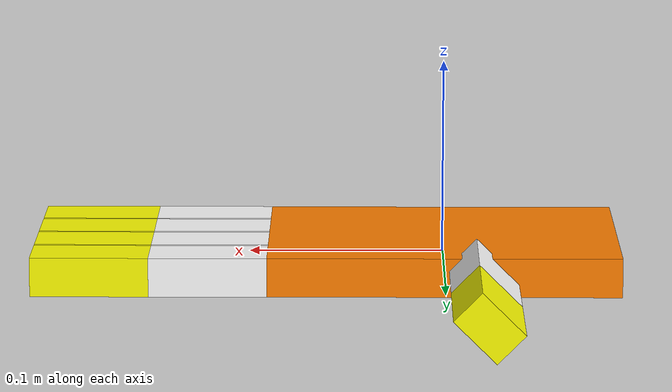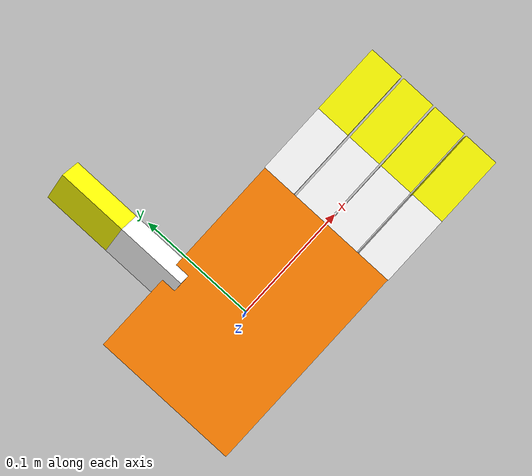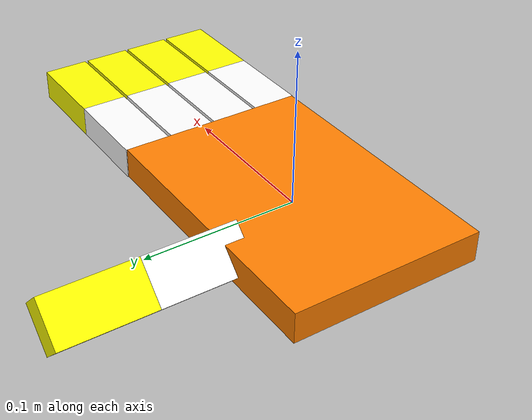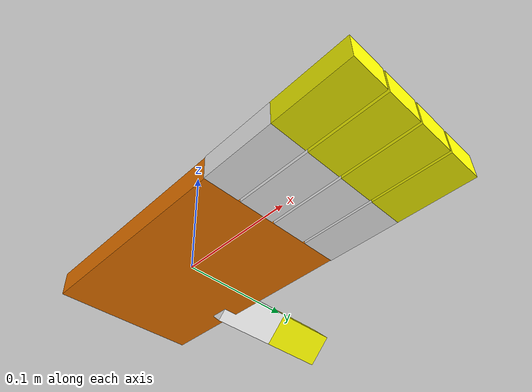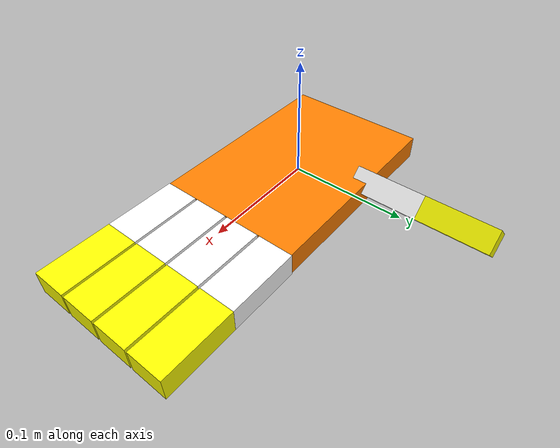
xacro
<?xml version="1.0"?>
<robot xmlns:xacro="http://www.ros.org/wiki/xacro" name="bionic_hand">

<!-- Color Definition -->
	<material name="color_white">	<color rgba="1 1 1 1"/></material>
	<material name="color_yellow"><color rgba="1 1 0 1"/></material>

<!-- Dirn/Locn Macro -->
	<xacro:macro name="axis_000" params="">	<axis xyz="0 0 0"/></xacro:macro>
	<xacro:macro name="axis_y" params="">	 	<axis xyz="0 1 0"/></xacro:macro>
	<xacro:macro name="rpy_000" params="">	<origin rpy="0 0 0"/></xacro:macro>

<!-- Shape macros -->
	<xacro:macro name="shape_box_lower_segment" params="">
  	<geometry><box size="0.06 0.03 0.02"/></geometry>
	</xacro:macro>

  <!-- Redefine Shape top here -->
  <xacro:macro name="shape_box_upper_segment" params="">
  	<geometry><box size="0.06 0.03 0.02"/></geometry>
	</xacro:macro>

  <!-- Create Shape thumb lower here -->
  <xacro:macro name="shape_box_thumb_lower_segment" params="">
  	<geometry><box size="0.08 0.03 0.02"/></geometry>
	</xacro:macro>

<!-- Link Macros -->
  <xacro:macro name="lower_link" params="name color_macro">
    <link name="${name}">
      <visual>
        <origin xyz="0.025 0 0" rpy="0 0 0"/>
        <xacro:shape_box_lower_segment/>
        <material name="${color_macro}"/>
      </visual>
    </link>
  </xacro:macro>

  <xacro:macro name="upper_link" params="name color_macro">
    <link name="${name}">
      <visual>
        <origin xyz="0.025 0 0" rpy="0 0 0"/>
        <xacro:shape_box_upper_segment/>
        <material name="${color_macro}"/>
      </visual>
    </link>
  </xacro:macro>

  <xacro:macro name="thumb_link" params="name color_macro">
    <link name="${name}">
      <visual>
        <origin xyz="0.025 0 0" rpy="0 0 0"/>
        <xacro:shape_box_thumb_lower_segment/>
        <material name="${color_macro}"/>
      </visual>
    </link>
  </xacro:macro>

<!-- Macro for a finger joint -->
  <xacro:macro name="joint_limits" params="">
    <limit lower="-1.57" upper="1.57" effort="10" velocity="1"/>
  </xacro:macro>

  <xacro:macro name="finger_joint" params="name parent child xyz rpy axis">
    <joint name="${name}" type="revolute">
      <parent link="${parent}"/>
      <child link="${child}"/>
      <origin xyz="${xyz}" rpy="${rpy}"/>
      <axis xyz="${axis}"/>
      <xacro:joint_limits/>
    </joint>
  </xacro:macro>

<!-- Base link -->
  <link name="base_link">
    <visual>
      <geometry>
        <box size="0.18 0.125 0.02"/>
      </geometry>
      <material name="color_orange">
        <color rgba="1 0.5 0 1"/>
      </material>
    </visual>
  </link>

<!-- Define fingers using macros -->
  <!-- Index -->
	  <xacro:lower_link name="index_lower" color_macro="color_white"/>
	  <xacro:upper_link name="index_upper" color_macro="color_yellow"/>
    <xacro:finger_joint
    name="index_lower_joint"
    parent="base_link"
    child="index_lower"
    xyz="0.095 0.048 0" rpy="0 0 0" axis="0 1 0"/>
    <xacro:finger_joint
      name="index_upper_joint"
      parent="index_lower"
      child="index_upper"
      xyz="0.06 0 0" rpy="0 0 0" axis="0 1 0"/>

  <!-- Middle -->
    <xacro:lower_link name="middle_lower" color_macro="color_white"/>
	  <xacro:upper_link name="middle_upper" color_macro="color_yellow"/>
    <xacro:finger_joint
    name="middle_lower_joint"
    parent="base_link"
    child="middle_lower"
    xyz="0.095 0.016 0" rpy="0 0 0" axis="0 1 0"/>
    <xacro:finger_joint
      name="middle_upper_joint"
      parent="middle_lower"
      child="middle_upper"
      xyz="0.06 0 0" rpy="0 0 0" axis="0 1 0"/>

  <!-- Ring  -->
    <xacro:lower_link name="ring_lower" color_macro="color_white"/>
	  <xacro:upper_link name="ring_upper" color_macro="color_yellow"/>
    <xacro:finger_joint
    name="ring_lower_joint"
    parent="base_link"
    child="ring_lower"
    xyz="0.095 -0.016 0" rpy="0 0 0" axis="0 1 0"/>
    <xacro:finger_joint
      name="ring_upper_joint"
      parent="ring_lower"
      child="ring_upper"
      xyz="0.06 0 0" rpy="0 0 0" axis="0 1 0"/>

  <!-- Pinky -->
    <xacro:lower_link name="pinky_lower" color_macro="color_white"/>
	  <xacro:upper_link name="pinky_upper" color_macro="color_yellow"/>
    <xacro:finger_joint
      name="pinky_lower_joint"
      parent="base_link"
      child="pinky_lower"
      xyz="0.095 -0.048 0" rpy="0 0 0" axis="0 1 0"/>
    <xacro:finger_joint
      name="pinky_upper_joint"
      parent="pinky_lower"
      child="pinky_upper"
      xyz="0.06 0 0" rpy="0 0 0" axis="0 1 0"/>

  <!-- Thumb -->
    <xacro:lower_link name="thumb_lower" color_macro="color_white"/>
	  <xacro:upper_link name="thumb_upper" color_macro="color_yellow"/>
    <xacro:finger_joint
      name="thumb_lower_joint"
      parent="base_link"
      child="thumb_lower"
      xyz="-0.02 0.055 0"
      rpy="-0.78 0 1.57"
      axis="0 1 0"/>
    <xacro:finger_joint
      name="thumb_upper_joint"
      parent="thumb_lower"
      child="thumb_upper"
      xyz="0.06 0 0" rpy="0 0 0" axis="0 1 0"/>

</robot>
